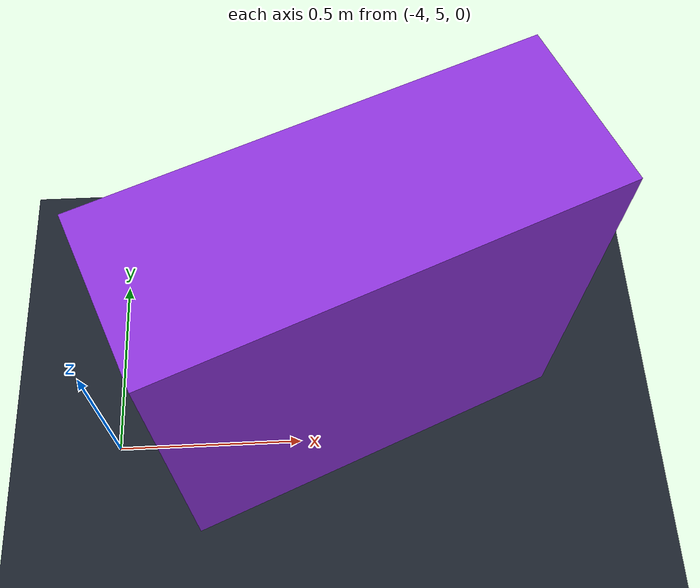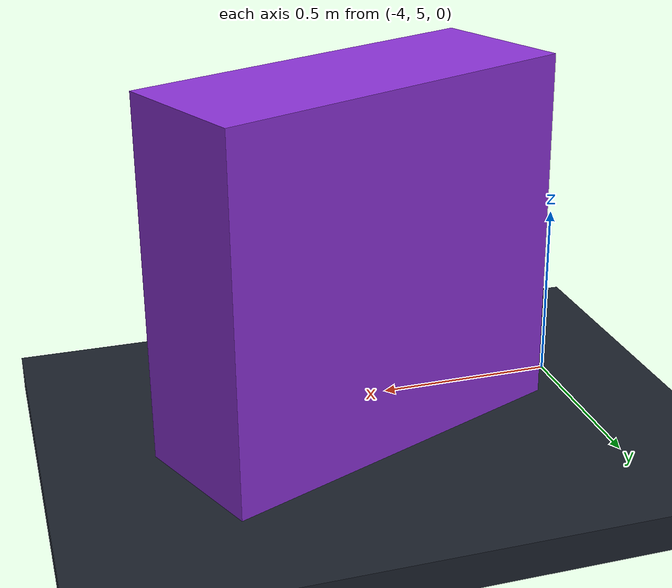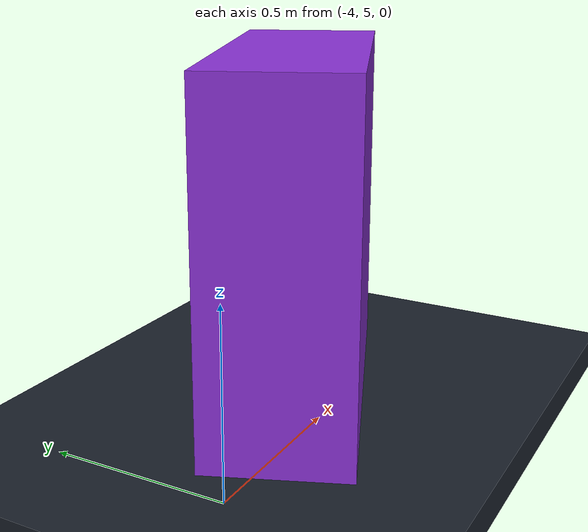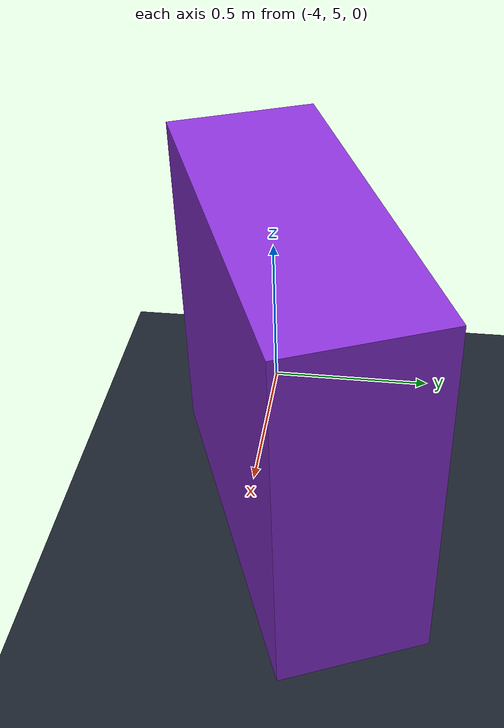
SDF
<sdf version="1.9">
 <world name="loop_course">
  <model name="ground">
   <static>true</static>
   <link name="ground">
    <collision name="ground_collision">
     <pose>0 0 -0.05 0 0 0</pose>
     <geometry><box><size>30 30 0.1</size></box></geometry>
    </collision>
    <visual name="ground_visual">
     <pose>0 0 -0.05 0 0 0</pose>
     <geometry><box><size>30 30 0.1</size></box></geometry>
     <material><ambient>0.105 0.13 0.17 1</ambient><diffuse>0.105 0.13 0.17 1</diffuse></material>
    </visual>
   </link>
  </model>
  <model name="obstacle_localization_1">
   <static>true</static>
   <pose>-3.365830647050003 5.146701738073578 .5 0 0 -2.7476431497654974</pose>
   <link name="landmark">
    <collision name="marker"><geometry><box><size>1.05 0.4 1</size></box></geometry></collision>
    <visual name="marker_visual">
     <geometry><box><size>1.05 0.4 1</size></box></geometry>
     <material><ambient>.55 .2 .85 1</ambient><diffuse>.55 .2 .85 1</diffuse></material>
    </visual>
   </link>
  </model>
 </world>
</sdf>
